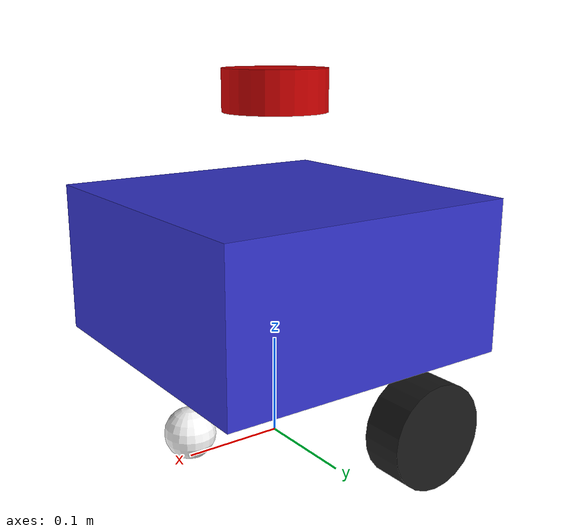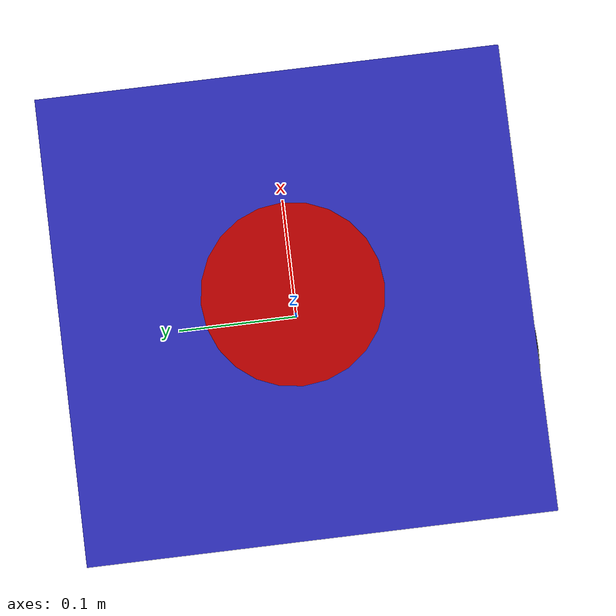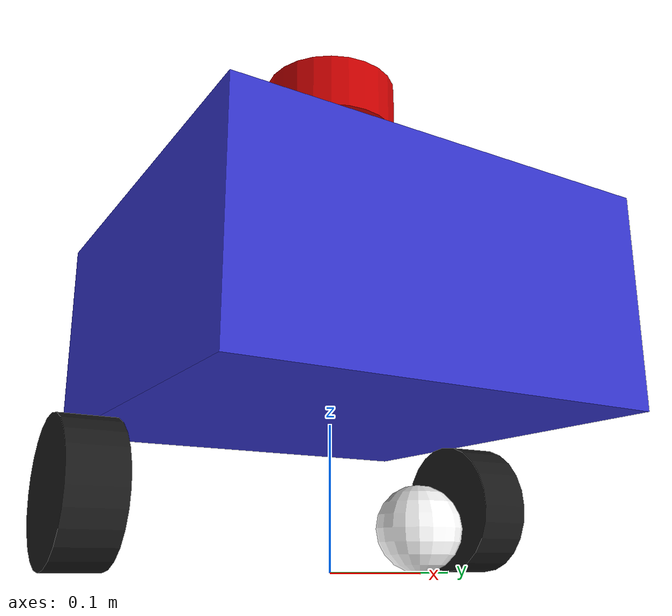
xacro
<?xml version="1.0"?>
<robot xmlns:xacro="http://www.ros.org/wiki/xacro" name="my_robot">

  <!-- ==================== PROPERTIES ==================== -->

  <!-- Chassis Properties -->
  <xacro:property name="chassis_length" value="0.30"/>
  <xacro:property name="chassis_width" value="0.30"/>
  <xacro:property name="chassis_height" value="0.15"/>
  <xacro:property name="chassis_mass" value="5.0"/>

  <!-- Wheel Properties -->
  <xacro:property name="wheel_radius" value="0.05"/>
  <xacro:property name="wheel_width" value="0.04"/>
  <xacro:property name="wheel_mass" value="0.5"/>
  <xacro:property name="wheel_separation" value="0.32"/>
  <xacro:property name="wheel_offset_x" value="-0.05"/>
  <xacro:property name="wheel_offset_z" value="-0.05"/>

  <!-- Caster Wheel Properties -->
  <xacro:property name="caster_radius" value="0.025"/>
  <xacro:property name="caster_mass" value="0.1"/>
  <xacro:property name="caster_offset_x" value="0.10"/>
  <xacro:property name="caster_offset_z" value="-0.075"/>

  <!-- LiDAR Properties -->
  <xacro:property name="lidar_radius" value="0.05"/>
  <xacro:property name="lidar_height" value="0.04"/>
  <xacro:property name="lidar_mass" value="0.2"/>
  <xacro:property name="lidar_offset_z" value="0.095"/>

  <!-- ==================== COLORS ==================== -->

  <material name="blue">
    <color rgba="0.2 0.2 0.8 1.0"/>
  </material>

  <material name="black">
    <color rgba="0.1 0.1 0.1 1.0"/>
  </material>

  <material name="white">
    <color rgba="1.0 1.0 1.0 1.0"/>
  </material>

  <material name="red">
    <color rgba="0.8 0.0 0.0 1.0"/>
  </material>

  <material name="green">
    <color rgba="0.0 0.8 0.0 1.0"/>
  </material>

  <!-- ==================== INERTIA MACROS ==================== -->

  <!-- Box Inertia Macro -->
  <xacro:macro name="box_inertia" params="m l w h">
    <inertia
      ixx="${(m/12.0) * (h*h + l*l)}"
      ixy="0.0"
      ixz="0.0"
      iyy="${(m/12.0) * (w*w + l*l)}"
      iyz="0.0"
      izz="${(m/12.0) * (w*w + h*h)}"/>
  </xacro:macro>

  <!-- Cylinder Inertia Macro -->
  <xacro:macro name="cylinder_inertia" params="m r h">
    <inertia
      ixx="${(m/12.0) * (3*r*r + h*h)}"
      ixy="0.0"
      ixz="0.0"
      iyy="${(m/12.0) * (3*r*r + h*h)}"
      iyz="0.0"
      izz="${(m/2.0) * r*r}"/>
  </xacro:macro>

  <!-- Sphere Inertia Macro -->
  <xacro:macro name="sphere_inertia" params="m r">
    <inertia
      ixx="${(2.0/5.0) * m * r * r}"
      ixy="0.0"
      ixz="0.0"
      iyy="${(2.0/5.0) * m * r * r}"
      iyz="0.0"
      izz="${(2.0/5.0) * m * r * r}"/>
  </xacro:macro>

  <!-- ==================== BASE FOOTPRINT ==================== -->

  <link name="base_footprint"/>

  <joint name="base_joint" type="fixed">
    <parent link="base_footprint"/>
    <child link="base_link"/>
    <origin xyz="0.0 0.0 ${wheel_radius - wheel_offset_z}" rpy="0 0 0"/>
  </joint>

  <!-- ==================== CHASSIS (BASE LINK) ==================== -->

  <link name="base_link">
    <visual>
      <origin xyz="0 0 ${chassis_height/2}" rpy="0 0 0"/>
      <geometry>
        <box size="${chassis_length} ${chassis_width} ${chassis_height}"/>
      </geometry>
      <material name="blue"/>
    </visual>

    <collision>
      <origin xyz="0 0 ${chassis_height/2}" rpy="0 0 0"/>
      <geometry>
        <box size="${chassis_length} ${chassis_width} ${chassis_height}"/>
      </geometry>
    </collision>

    <inertial>
      <origin xyz="0 0 ${chassis_height/2}" rpy="0 0 0"/>
      <mass value="${chassis_mass}"/>
      <xacro:box_inertia m="${chassis_mass}" l="${chassis_length}" w="${chassis_width}" h="${chassis_height}"/>
    </inertial>
  </link>

  <!-- Gazebo Chassis Color -->
  <gazebo reference="base_link">
    <material>Gazebo/Blue</material>
  </gazebo>

  <!-- ==================== WHEEL MACRO ==================== -->

  <xacro:macro name="drive_wheel" params="prefix y_reflect">

    <link name="${prefix}_wheel">
      <visual>
        <origin xyz="0 0 0" rpy="${pi/2} 0 0"/>
        <geometry>
          <cylinder radius="${wheel_radius}" length="${wheel_width}"/>
        </geometry>
        <material name="black"/>
      </visual>

      <collision>
        <origin xyz="0 0 0" rpy="${pi/2} 0 0"/>
        <geometry>
          <cylinder radius="${wheel_radius}" length="${wheel_width}"/>
        </geometry>
      </collision>

      <inertial>
        <origin xyz="0 0 0" rpy="${pi/2} 0 0"/>
        <mass value="${wheel_mass}"/>
        <xacro:cylinder_inertia m="${wheel_mass}" r="${wheel_radius}" h="${wheel_width}"/>
      </inertial>
    </link>

    <joint name="${prefix}_wheel_joint" type="continuous">
      <parent link="base_link"/>
      <child link="${prefix}_wheel"/>
      <origin xyz="${wheel_offset_x} ${y_reflect * wheel_separation / 2} ${wheel_offset_z}" rpy="0 0 0"/>
      <axis xyz="0 1 0"/>
      <dynamics damping="0.1" friction="0.1"/>
    </joint>

    <!-- Gazebo Wheel Settings -->
    <gazebo reference="${prefix}_wheel">
      <material>Gazebo/Black</material>
      <mu1>1.0</mu1>
      <mu2>1.0</mu2>
      <kp>1000000.0</kp>
      <kd>100.0</kd>
      <minDepth>0.001</minDepth>
    </gazebo>

  </xacro:macro>

  <!-- Create Left and Right Wheels -->
  <xacro:drive_wheel prefix="left" y_reflect="1"/>
  <xacro:drive_wheel prefix="right" y_reflect="-1"/>

  <!-- ==================== CASTER WHEEL ==================== -->

  <link name="caster_wheel">
    <visual>
      <origin xyz="0 0 0" rpy="0 0 0"/>
      <geometry>
        <sphere radius="${caster_radius}"/>
      </geometry>
      <material name="white"/>
    </visual>

    <collision>
      <origin xyz="0 0 0" rpy="0 0 0"/>
      <geometry>
        <sphere radius="${caster_radius}"/>
      </geometry>
    </collision>

    <inertial>
      <origin xyz="0 0 0" rpy="0 0 0"/>
      <mass value="${caster_mass}"/>
      <xacro:sphere_inertia m="${caster_mass}" r="${caster_radius}"/>
    </inertial>
  </link>

  <joint name="caster_wheel_joint" type="fixed">
    <parent link="base_link"/>
    <child link="caster_wheel"/>
    <origin xyz="${caster_offset_x} 0 ${caster_offset_z}" rpy="0 0 0"/>
  </joint>

  <!-- Gazebo Caster Settings (Frictionless) -->
  <gazebo reference="caster_wheel">
    <material>Gazebo/White</material>
    <mu1>0.0</mu1>
    <mu2>0.0</mu2>
    <kp>1000000.0</kp>
    <kd>100.0</kd>
    <minDepth>0.001</minDepth>
  </gazebo>

  <!-- ==================== LIDAR ==================== -->

  <link name="lidar_link">
    <visual>
      <origin xyz="0 0 0" rpy="0 0 0"/>
      <geometry>
        <cylinder radius="${lidar_radius}" length="${lidar_height}"/>
      </geometry>
      <material name="red"/>
    </visual>

    <collision>
      <origin xyz="0 0 0" rpy="0 0 0"/>
      <geometry>
        <cylinder radius="${lidar_radius}" length="${lidar_height}"/>
      </geometry>
    </collision>

    <inertial>
      <origin xyz="0 0 0" rpy="0 0 0"/>
      <mass value="${lidar_mass}"/>
      <xacro:cylinder_inertia m="${lidar_mass}" r="${lidar_radius}" h="${lidar_height}"/>
    </inertial>
  </link>

  <joint name="lidar_joint" type="fixed">
    <parent link="base_link"/>
    <child link="lidar_link"/>
    <origin xyz="0 0 ${chassis_height + lidar_offset_z}" rpy="0 0 0"/>
  </joint>

  <!-- Gazebo LiDAR Color -->
  <gazebo reference="lidar_link">
    <material>Gazebo/Red</material>
  </gazebo>

   <!-- ==================== IGNITION GAZEBO PLUGINS ==================== -->

  <!-- Differential Drive Plugin -->
  <gazebo>
    <plugin filename="ignition-gazebo-diff-drive-system"
            name="ignition::gazebo::systems::DiffDrive">
      <left_joint>left_wheel_joint</left_joint>
      <right_joint>right_wheel_joint</right_joint>
      <wheel_separation>0.32</wheel_separation>
      <wheel_radius>0.05</wheel_radius>
      <odom_publish_frequency>50</odom_publish_frequency>
      <max_linear_acceleration>1.0</max_linear_acceleration>
      <min_linear_acceleration>-1.0</min_linear_acceleration>
      <max_angular_acceleration>2.0</max_angular_acceleration>
      <min_angular_acceleration>-2.0</min_angular_acceleration>
      <max_linear_velocity>0.5</max_linear_velocity>
      <min_linear_velocity>-0.5</min_linear_velocity>
      <max_angular_velocity>1.0</max_angular_velocity>
      <min_angular_velocity>-1.0</min_angular_velocity>
      <topic>cmd_vel</topic>
      <odom_topic>odom</odom_topic>
      <frame_id>odom</frame_id>
      <child_frame_id>base_footprint</child_frame_id>
      <tf_topic>/tf</tf_topic>
    </plugin>
  </gazebo>

  <!-- Joint State Publisher Plugin -->
  <gazebo>
    <plugin filename="ignition-gazebo-joint-state-publisher-system"
            name="ignition::gazebo::systems::JointStatePublisher">
      <joint_name>left_wheel_joint</joint_name>
      <joint_name>right_wheel_joint</joint_name>
      <update_rate>50</update_rate>
      <topic>joint_states</topic>
    </plugin>
  </gazebo>

  <!-- LiDAR Sensor -->
  <gazebo reference="lidar_link">
    <sensor name="lidar_sensor" type="gpu_lidar">
      <pose>0 0 0 0 0 0</pose>
      <topic>scan</topic>
      <update_rate>10</update_rate>
      <lidar>
        <scan>
          <horizontal>
            <samples>360</samples>
            <resolution>1</resolution>
            <min_angle>-3.14159</min_angle>
            <max_angle>3.14159</max_angle>
          </horizontal>
          <vertical>
            <samples>1</samples>
            <resolution>1</resolution>
            <min_angle>0</min_angle>
            <max_angle>0</max_angle>
          </vertical>
        </scan>
        <range>
          <min>0.1</min>
          <max>10.0</max>
          <resolution>0.01</resolution>
        </range>
        <noise>
          <type>gaussian</type>
          <mean>0.0</mean>
          <stddev>0.01</stddev>
        </noise>
      </lidar>
      <visualize>true</visualize>
      <always_on>true</always_on>
    </sensor>
  </gazebo>
</robot>
